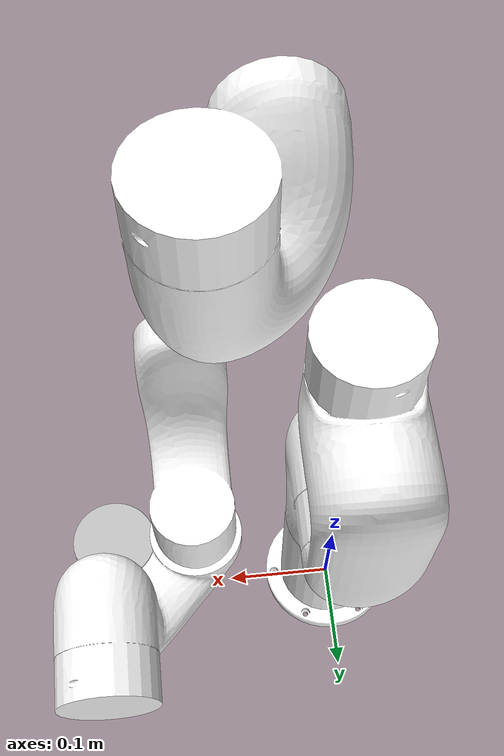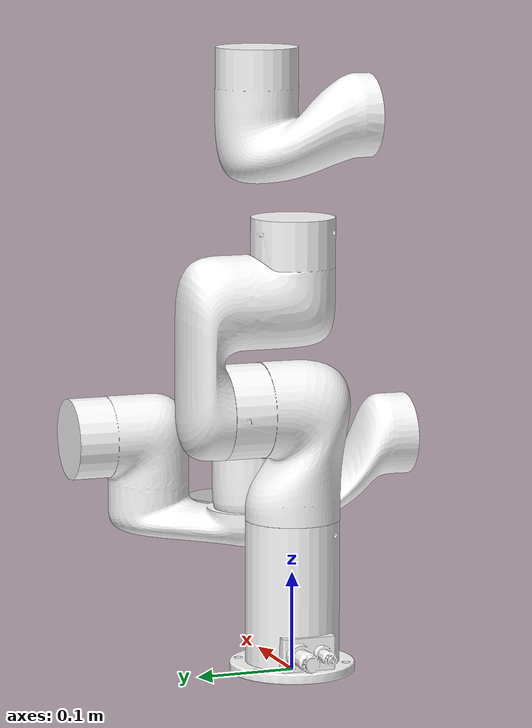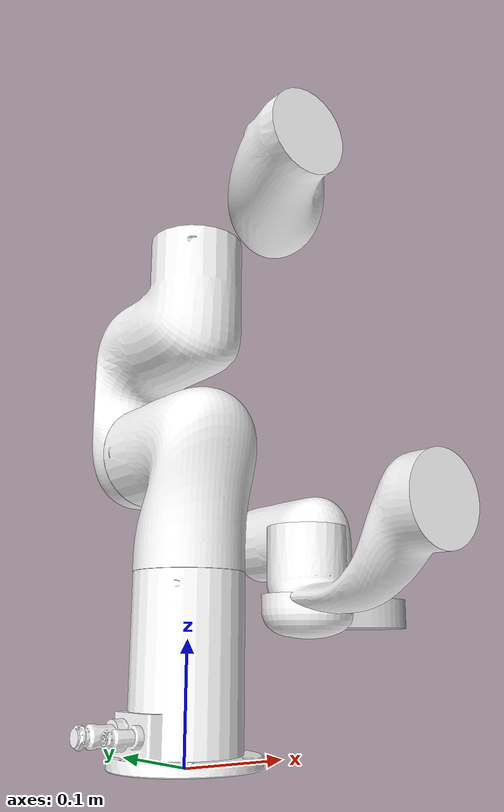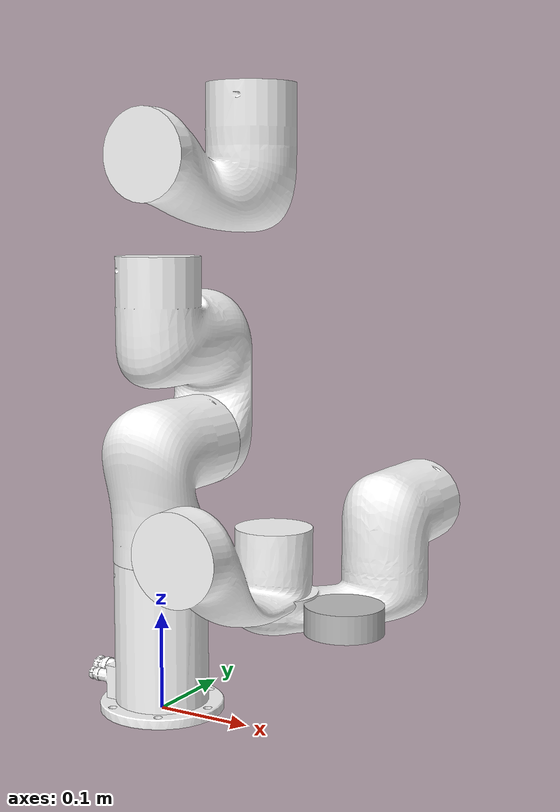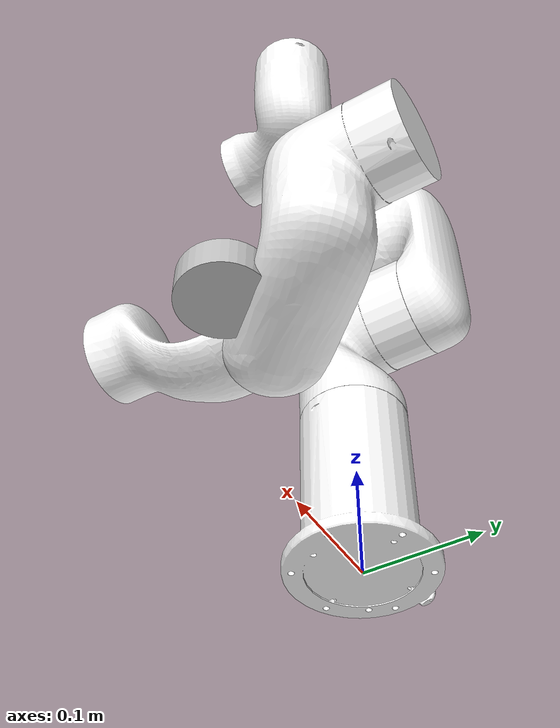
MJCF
<mujoco model="xarm6">
  <compiler angle="radian"/>

  <asset>
    <material name="white" rgba="1 1 1 1"/>
    <material name="gray" rgba="0.753 0.753 0.753 1"/>
    <material name="black" rgba="0.149 0.149 0.149 1"/>

    <mesh name="link_base" file="/home/xiaohang_shi/catkin_ws/src/gello_software/third_party/mujoco_menagerie/ufactory_xarm6/assets/link_base.stl"/>
    <mesh name="link1" file="/home/xiaohang_shi/catkin_ws/src/gello_software/third_party/mujoco_menagerie/ufactory_xarm6/assets/link1.stl"/>
    <mesh name="link2" file="/home/xiaohang_shi/catkin_ws/src/gello_software/third_party/mujoco_menagerie/ufactory_xarm6/assets/link2.stl"/>
    <mesh name="link3" file="/home/xiaohang_shi/catkin_ws/src/gello_software/third_party/mujoco_menagerie/ufactory_xarm6/assets/link3.stl"/>
    <mesh name="link4" file="/home/xiaohang_shi/catkin_ws/src/gello_software/third_party/mujoco_menagerie/ufactory_xarm6/assets/link4.stl"/>
    <mesh name="link5" file="/home/xiaohang_shi/catkin_ws/src/gello_software/third_party/mujoco_menagerie/ufactory_xarm6/assets/link5.stl"/>
    <mesh name="link6" file="/home/xiaohang_shi/catkin_ws/src/gello_software/third_party/mujoco_menagerie/ufactory_xarm6/assets/link6.stl"/>
    <mesh name="end_tool" file="/home/xiaohang_shi/catkin_ws/src/gello_software/third_party/mujoco_menagerie/ufactory_xarm6/assets/end_tool.stl"/>
  </asset>

  <default>
    <default class="xarm6">
      <geom type="mesh" material="white"/>
      <joint axis="0 0 1" range="-6.28319 6.28319" frictionloss="1"/>
      <general biastype="affine" ctrlrange="-6.28319 6.28319"/>
      <default class="size1">
        <joint damping="1"/>
        <general gainprm="1500" biasprm="0 -1500 -150" forcerange="-50 50"/>
      </default>
      <default class="size2">
        <joint damping="1"/>
        <general gainprm="1000" biasprm="0 -1000 -100" forcerange="-32 32"/>
      </default>
      <default class="size3">
        <joint damping="1"/>
        <general gainprm="800" biasprm="0 -800 -80" forcerange="-20 20"/>
      </default>
      <site size="0.001" rgba="1 0 0 1" group="4"/>
    </default>
  </default>

  <worldbody>
    <body name="link_base" pos="0 0 0" childclass="xarm6">
      <inertial pos="0 0 0.09103" quat="0.981065 0.000747228 -0.0021866 -0.193666" mass="2.7" diaginertia="0.00495024 0.00494031 0.00221894"/>
      <geom contype="0" conaffinity="0" group="1" density="0" mesh="link_base"/>
      <body name="link1" pos="0 0 0.267">
        <inertial pos="0.00022 0.02951 -0.0124" quat="0.976139 -0.216078 -0.00387312 -0.0211677" mass="2.3814" diaginertia="0.00585697 0.00544434 0.00312315"/>
        <joint name="joint1" class="size1" pos="0 0 0"/>
        <geom contype="0" conaffinity="0" group="1" density="0" mesh="link1"/>
        <body name="link2" quat="0.707105 -0.707108 0 0">
          <inertial pos="0.03881 -0.22783 0.03496" quat="0.635305 0.753023 0.170976 -0.010531" mass="2.2675" diaginertia="0.0294477 0.0281783 0.00383449"/>
          <joint name="joint2" class="size1" pos="0 0 0"/>
          <geom contype="0" conaffinity="0" group="1" density="0" mesh="link2"/>
          <body name="link3" pos="0.0535 -0.2845 0">
            <inertial pos="0.07041 0.11631 0.0107" quat="0.845838 0.425539 -0.293179 0.132369" mass="1.875" diaginertia="0.00714132 0.00699471 0.00196753"/>
            <joint name="joint3" class="size2" pos="0 0 0"/>
            <geom contype="0" conaffinity="0" group="1" density="0" mesh="link3"/>
            <body name="link4" pos="0.0775 0.3425 0" quat="0.707105 -0.707108 0 0">
              <inertial pos="-0.00018 0.01798 -0.02291" quat="0.99929 -0.0369702 0.00179434 -0.00701174" mass="1.3192" diaginertia="0.00489614 0.00447403 0.00132609"/>
              <joint name="joint4" class="size2" pos="0 0 0"/>
              <geom contype="0" conaffinity="0" group="1" density="0" mesh="link4"/>
              <body name="link5" quat="0.707105 0.707108 0 0">
                <inertial pos="0.0651 0.03096 0.00315" quat="-0.223008 0.771309 0.16027 0.574163" mass="1.33854" diaginertia="0.00241824 0.00213367 0.00108731"/>
                <joint name="joint5" class="size2" pos="0 0 0"/>
                <geom contype="0" conaffinity="0" group="1" density="0" mesh="link5"/>
                <body name="link6" pos="0.076 0.097 0" quat="0.707105 -0.707108 0 0">
                  <inertial pos="0 -0.00677 -0.01098" quat="0.487612 0.512088 -0.512088 0.487612" mass="0.17" diaginertia="0.000132176 9.3e-05 5.85236e-05"/>
                  <joint name="joint6" class="size3" pos="0 0 0"/>
                  <geom material="gray" contype="0" conaffinity="0" group="1" density="0" mesh="end_tool"/>
                  <body name="link_eef"/>
                </body>
              </body>
            </body>
          </body>
        </body>
      </body>
    </body>
  </worldbody>

  <actuator>
    <general name="act1" joint="joint1" class="size1"/>
    <general name="act2" joint="joint2" class="size1" ctrlrange="-2.059 2.0944"/>
    <general name="act3" joint="joint3" class="size2" ctrlrange="-3.927 0.19198"/>
    <general name="act4" joint="joint4" class="size2"/>
    <general name="act5" joint="joint5" class="size2" ctrlrange="-1.69297 3.14159"/>
    <general name="act6" joint="joint6" class="size3"/>
  </actuator>

</mujoco>
